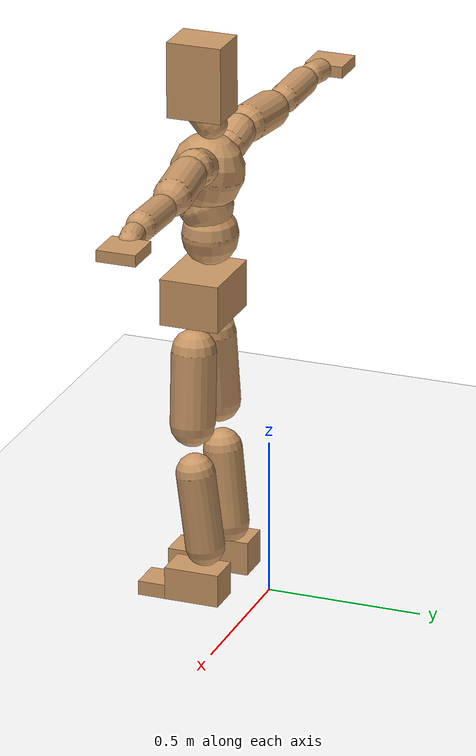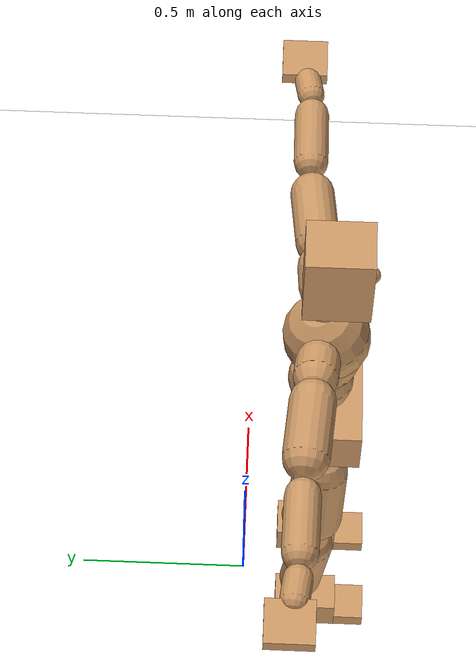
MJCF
<mujoco model="humanoid">
  <option integrator="implicitfast" />

  <visual>
    <global offwidth="1280" offheight="960" />
    <headlight active="1" ambient="0.34 0.34 0.34" diffuse="0.5 0.5 0.5" />
  </visual>

  <default>
    <joint damping="2" stiffness="2" armature="0.01" limited="true" solimplimit="0 .99 .01" />
    <geom condim="1" friction="0.7 0.005 0.0001" solimp=".99 .99 .003" solref="0.015 1" margin="0.001" rgba="0.8 0.6 .4 1" />
    <default class="smplcontact">
      <geom condim="3" friction="1. 0.005 0.0001" solref="0.015 1" solimp="0.98 0.98 0.001" priority="1" />
    </default>
    <default class="stiff_medium">
      <joint stiffness="10" />
    </default>
    <default class="stiff_medium_higher">
      <joint stiffness="50" />
    </default>
    <default class="stiff_high">
      <joint stiffness="100" />
    </default>
  </default>

  <asset>
    <texture type="skybox" builtin="gradient" rgb1="0.99 0.99 0.99" rgb2="0.608 0.828 0.892" width="100" />
    <texture builtin="flat" height="1278" mark="cross" markrgb="1 1 1" name="texgeom" random="0.01" rgb1="0.8 0.6 0.4" rgb2="0.8 0.6 0.4" type="cube" width="127" />
    <texture name="texplane" type="2d" builtin="checker" markrgb="1 1 1" rgb1="0.756 0.772 0.76" rgb2="0.6 0.6 0.6" width="100" height="100" />
    <material name="MatPlane" reflectance="0.5" texture="texplane" texrepeat="1 1" texuniform="true" />
    <material name="geom" texture="texgeom" texuniform="true" />
  </asset>

  <worldbody>
    <light name="tracking_light" pos="0 0 7" dir="0 0 -1" directional="true" cutoff="100" exponent="1" diffuse="1 1 1" specular="0.1 0.1 0.1" mode="trackcom" />
    <camera name="back" pos="0 3 2.4" xyaxes="-1 0 0 0 -1 2" mode="trackcom" />
    <camera name="side" pos="-3 0 2.4" xyaxes="0 -1 0 1 0 2" mode="trackcom" />
    <camera name="front_side" pos="-2.8 -2.8 0.8" xyaxes="0.5 -0.5 0 0.1 0.1 1" mode="trackcom" />
    <geom condim="3" name="floor" pos="0 0 0" rgba="1 1 1 1" size="100 100 .2" type="plane" material="MatPlane" />
    <body name="Pelvis" pos="-0.0018 -0.2233 0.983489" euler="90 0 0">
      <site name="Pelvis" size="0.01" />
      <freejoint name="Pelvis" />
      <geom type="box" pos="0 -0.0126139 -0.006325" size="0.122935 0.0752663 0.09545" quat="1.0000 0.0000 0.0000 0.0000" density="3165.830099" name="Pelvis" />
      <body name="L_Hip" pos="0.079925 -0.0952818 -0.00782">
        <joint name="L_Hip_x" type="hinge" pos="0 0 0" axis="1 0 0" stiffness="10" range="-160.0 22.92" class="stiff_medium" damping="15" />
        <joint name="L_Hip_y" type="hinge" pos="0 0 0" axis="0 1 0" stiffness="10" range="-70.0 70.0" class="stiff_medium" damping="10" />
        <joint name="L_Hip_z" type="hinge" pos="0 0 0" axis="0 0 1" stiffness="10" range="-28.65 90.0" class="stiff_medium" damping="10" />
        <geom type="capsule" density="2040.816327" fromto="0.0072008 -0.0781845 -0.0009383 0.0285714 -0.312949 -0.00375297" size="0.070725" name="L_Hip" />
        <body name="L_Knee" pos="0.0357722 -0.391133 -0.00469127">
          <joint name="L_Knee_x" type="hinge" pos="0 0 0" axis="1 0 0" range="-5.16 171.89" damping="8" />
          <joint name="L_Knee_y" type="hinge" pos="0 0 0" axis="0 1 0" range="-4.58 6.88" damping="8" />
          <joint name="L_Knee_z" type="hinge" pos="0 0 0" axis="0 0 1" range="-6.88 4.58" damping="8" />
          <geom type="capsule" density="1234.567901" fromto="-0.00281112 -0.0829815 -0.00906242 -0.0113594 -0.331923 -0.0364794" size="0.062215" name="L_Knee" />
          <body name="L_Ankle" pos="-0.0141705 -0.414905 -0.0455418">
            <joint name="L_Ankle_x" type="hinge" pos="0 0 0" axis="1 0 0" range="-45.84 45.84" class="stiff_medium" damping="6" />
            <joint name="L_Ankle_y" type="hinge" pos="0 0 0" axis="0 1 0" range="-74.48 22.92" class="stiff_medium" damping="3" />
            <joint name="L_Ankle_z" type="hinge" pos="0 0 0" axis="0 0 1" range="-4.58 4.58" class="stiff_medium" damping="6" />
            <geom type="box" pos="0.026795 -0.027485 0.0253533" size="0.055545 0.05336 0.089051" quat="1.0000 0.0000 0.0000 0.0000" density="449.071558" name="L_Ankle" class="smplcontact" />
            <body name="L_Toe" pos="0.03036 -0.06417 0.124986">
              <joint name="L_Toe_x" type="hinge" pos="0 0 0" axis="1 0 0" range="-91.67 22.92" />
              <joint name="L_Toe_y" type="hinge" pos="0 0 0" axis="0 1 0" range="-4.58 4.58" />
              <joint name="L_Toe_z" type="hinge" pos="0 0 0" axis="0 0 1" range="-4.58 4.58" />
              <geom type="box" pos="-0.00345 0.006325 0.0259819" size="0.05497 0.023 0.0519639" quat="1.0000 0.0000 0.0000 0.0000" density="423.206892" name="L_Toe" class="smplcontact" />
            </body>
          </body>
        </body>
      </body>
      <body name="R_Hip" pos="-0.077855 -0.0943435 -0.004945">
        <joint name="R_Hip_x" type="hinge" pos="0 0 0" axis="1 0 0" stiffness="10" range="-160.0 22.92" class="stiff_medium" damping="15" />
        <joint name="R_Hip_y" type="hinge" pos="0 0 0" axis="0 1 0" stiffness="10" range="-70.0 70.0" class="stiff_medium" damping="10" />
        <joint name="R_Hip_z" type="hinge" pos="0 0 0" axis="0 0 1" stiffness="10" range="-90.0 28.65" class="stiff_medium" damping="10" />
        <geom type="capsule" density="2040.816327" fromto="-0.00803446 -0.0797481 -0.00188009 -0.031907 -0.319099 -0.00740518" size="0.06969" name="R_Hip" />
        <body name="R_Knee" pos="-0.0399415 -0.398847 -0.00928528">
          <joint name="R_Knee_x" type="hinge" pos="0 0 0" axis="1 0 0" range="-5.16 171.89" damping="8" />
          <joint name="R_Knee_y" type="hinge" pos="0 0 0" axis="0 1 0" range="-6.88 4.58" damping="8" />
          <joint name="R_Knee_z" type="hinge" pos="0 0 0" axis="0 0 1" range="-4.58 6.88" damping="8" />
          <geom type="capsule" density="1234.567901" fromto="0.00334289 -0.0830839 -0.00886768 0.0131421 -0.332234 -0.0352422" size="0.062215" name="R_Knee" />
          <body name="R_Ankle" pos="0.016485 -0.415318 -0.0441098">
            <joint name="R_Ankle_x" type="hinge" pos="0 0 0" axis="1 0 0" range="-45.84 45.84" class="stiff_medium" damping="6" />
            <joint name="R_Ankle_y" type="hinge" pos="0 0 0" axis="0 1 0" range="-22.92 74.48" class="stiff_medium" damping="3" />
            <joint name="R_Ankle_z" type="hinge" pos="0 0 0" axis="0 0 1" range="-4.58 4.58" class="stiff_medium" damping="6" />
            <geom type="box" pos="-0.02438 -0.02001 0.0268201" size="0.055545 0.05497 0.0906225" quat="1.0000 0.0000 0.0000 0.0000" density="434.700981" name="R_Ankle" class="smplcontact" />
            <body name="R_Toe" pos="-0.02921 -0.055315 0.129176">
              <joint name="R_Toe_x" type="hinge" pos="0 0 0" axis="1 0 0" range="-91.67 22.92" />
              <joint name="R_Toe_y" type="hinge" pos="0 0 0" axis="0 1 0" range="-4.58 4.58" />
              <joint name="R_Toe_z" type="hinge" pos="0 0 0" axis="0 0 1" range="-4.58 4.58" />
              <geom type="box" pos="0.00483 0.005175 0.0237818" size="0.055085 0.02484 0.0516496" quat="1.0000 0.0000 0.0000 0.0000" density="407.384095" name="R_Toe" class="smplcontact" />
            </body>
          </body>
        </body>
      </body>
      <body name="Torso" pos="-0.002875 0.113629 -0.030705">
        <joint name="Torso_x" type="hinge" pos="0 0 0" axis="1 0 0" range="-25.78 57.3" class="stiff_medium" damping="15" />
        <joint name="Torso_y" type="hinge" pos="0 0 0" axis="0 1 0" range="-57.3 57.3" class="stiff_high" damping="20" />
        <joint name="Torso_z" type="hinge" pos="0 0 0" axis="0 0 1" range="-34.38 34.38" class="stiff_high" damping="20" />
        <geom type="capsule" density="2040.816327" fromto="0.00263282 0.0633811 0.000526564 0.00315406 0.0774545 0.000630811" size="0.088435" name="Torso" />
        <body name="Spine" pos="0.00578648 0.14094 0.0011573">
          <joint name="Spine_x" type="hinge" pos="0 0 0" axis="1 0 0" stiffness="10" range="-25.78 57.3" class="stiff_medium" damping="15" />
          <joint name="Spine_y" type="hinge" pos="0 0 0" axis="0 1 0" stiffness="10" range="-57.3 57.3" class="stiff_high" damping="8" />
          <joint name="Spine_z" type="hinge" pos="0 0 0" axis="0 0 1" stiffness="20" range="-34.38 34.38" class="stiff_high" damping="12" />
          <geom type="capsule" density="2040.816327" fromto="0.000756926 0.0248221 0.0118601 0.000861173 0.0303472 0.0145705" size="0.086825" name="Spine" />
          <body name="Chest" pos="0.0016181 0.0551693 0.0264306">
            <joint name="Chest_x" type="hinge" pos="0 0 0" axis="1 0 0" stiffness="10" range="-25.78 57.3" class="stiff_medium" damping="15" />
            <joint name="Chest_y" type="hinge" pos="0 0 0" axis="0 1 0" stiffness="10" range="-57.3 57.3" class="stiff_high" damping="8" />
            <joint name="Chest_z" type="hinge" pos="0 0 0" axis="0 0 1" stiffness="20" range="-34.38 34.38" class="stiff_high" damping="12" />
            <geom type="capsule" density="2040.816327" fromto="-0.000986486 0.0711043 -0.0180029 -0.00109073 0.0868456 -0.0220686" size="0.11523" name="Chest" />
            <body name="Neck" pos="-0.0030698 0.223305 -0.0434772">
              <joint name="Neck_x" type="hinge" pos="0 0 0" axis="1 0 0" range="-28.65 57.3" class="stiff_medium_higher" damping="10" />
              <joint name="Neck_y" type="hinge" pos="0 0 0" axis="0 1 0" range="-40.11 40.11" class="stiff_medium_higher" damping="10" />
              <joint name="Neck_z" type="hinge" pos="0 0 0" axis="0 0 1" range="-40.11 40.11" class="stiff_medium_higher" damping="10" />
              <geom type="capsule" density="1000" fromto="0.00104393 0.013618 0.0107932 0.00429167 0.0544767 0.0430611" size="0.0503885" name="Neck" />
              <body name="Head" pos="0.00545155 0.0680994 0.0537425">
                <joint name="Head_x" type="hinge" pos="0 0 0" axis="1 0 0" range="-28.65 57.3" class="stiff_medium_higher" damping="2" />
                <joint name="Head_y" type="hinge" pos="0 0 0" axis="0 1 0" range="-40.11 40.11" class="stiff_medium_higher" damping="2" />
                <joint name="Head_z" type="hinge" pos="0 0 0" axis="0 0 1" range="-40.11 40.11" class="stiff_medium_higher" damping="2" />
                <geom type="box" pos="-0.00485394 0.0917749 -0.0134061" size="0.0700354 0.1209 0.0878332" quat="1.0000 0.0000 0.0000 0.0000" density="1018.069894" name="Head" />
                <geom type="capsule" name="nose" size="0.023114 0.011557" pos="0 0.0733361 0.057785" quat="1 0 0 0" mass="0" contype="0" conaffinity="0" />
              </body>
            </body>
            <body name="L_Thorax" pos="0.0907068 0.126852 -0.0358309">
              <joint name="L_Thorax_x" type="hinge" pos="0 0 0" axis="1 0 0" range="-10.89 4.58" class="stiff_medium_higher" damping="20" />
              <joint name="L_Thorax_y" type="hinge" pos="0 0 0" axis="0 1 0" range="-28.65 17.19" class="stiff_medium_higher" damping="20" />
              <joint name="L_Thorax_z" type="hinge" pos="0 0 0" axis="0 0 1" range="-31.51 40.11" class="stiff_medium_higher" damping="20" />
              <geom type="capsule" density="1000" fromto="0.0189726 0.00635896 -0.00188 0.0758915 0.0254362 -0.00740509" size="0.059915" name="L_Thorax" />
              <body name="L_Shoulder" pos="0.0948641 0.0317951 -0.00928509">
                <joint name="L_Shoulder_x" type="hinge" pos="0 0 0" axis="1 0 0" range="-97.4 97.4" class="stiff_medium" damping="6" />
                <joint name="L_Shoulder_y" type="hinge" pos="0 0 0" axis="0 1 0" range="-108.86 80.21" class="stiff_medium" damping="6" />
                <joint name="L_Shoulder_z" type="hinge" pos="0 0 0" axis="0 0 1" range="-97.4 85.94" class="stiff_medium" damping="6" />
                <geom type="capsule" density="1000" fromto="0.0541038 -0.00271775 -0.00573392 0.216521 -0.0106405 -0.0229347" size="0.059455" name="L_Shoulder" />
                <body name="L_Elbow" pos="0.270624 -0.0133583 -0.0286686">
                  <joint name="L_Elbow_x" type="hinge" pos="0 0 0" axis="1 0 0" range="-17.19 4.58" damping="5" />
                  <joint name="L_Elbow_y" type="hinge" pos="0 0 0" axis="0 1 0" range="-180.0 17.19" damping="5" />
                  <joint name="L_Elbow_z" type="hinge" pos="0 0 0" axis="0 0 1" range="-100.84 4.58" damping="5" />
                  <geom type="capsule" density="1000" fromto="0.051915 0.0018767 -0.000204943 0.207869 0.00750604 -0.000934672" size="0.046575" name="L_Elbow" />
                  <body name="L_Wrist" pos="0.259783 0.00938275 -0.00125462">
                    <joint name="L_Wrist_x" type="hinge" pos="0 0 0" axis="1 0 0" range="-180.0 22.92" />
                    <joint name="L_Wrist_y" type="hinge" pos="0 0 0" axis="0 1 0" range="-17.19 17.19" />
                    <joint name="L_Wrist_z" type="hinge" pos="0 0 0" axis="0 0 1" range="-22.92 22.92" />
                    <geom type="capsule" density="1000" fromto="0.0175138 -0.0016644 -0.00312747 0.0700543 -0.0067725 -0.0125097" size="0.03657" name="L_Wrist" class="smplcontact" />
                    <body name="L_Hand" pos="0.087569 -0.00855198 -0.0155223">
                      <joint name="L_Hand_x" type="hinge" pos="0 0 0" axis="1 0 0" range="-17.19 17.19" />
                      <joint name="L_Hand_y" type="hinge" pos="0 0 0" axis="0 1 0" range="-51.57 51.57" />
                      <joint name="L_Hand_z" type="hinge" pos="0 0 0" axis="0 0 1" range="-91.67 91.67" />
                      <geom type="box" pos="0.0513938 0.00115 -0.00667" size="0.0609845 0.01817 0.06187" quat="1.0000 0.0000 0.0000 0.0000" density="400.552564" name="L_Hand" class="smplcontact" />
                    </body>
                  </body>
                </body>
              </body>
            </body>
            <body name="R_Thorax" pos="-0.0939837 0.123585 -0.0410234">
              <joint name="R_Thorax_x" type="hinge" pos="0 0 0" axis="1 0 0" range="-10.89 4.58" class="stiff_medium_higher" damping="20" />
              <joint name="R_Thorax_y" type="hinge" pos="0 0 0" axis="0 1 0" range="-17.19 28.65" class="stiff_medium_higher" damping="20" />
              <joint name="R_Thorax_z" type="hinge" pos="0 0 0" axis="0 0 1" range="-40.11 31.51" class="stiff_medium_higher" damping="20" />
              <geom type="capsule" density="1000" fromto="-0.0200157 0.00677616 -0.00187289 -0.080062 0.0271043 -0.00760648" size="0.058765" name="R_Thorax" />
              <body name="R_Shoulder" pos="-0.100074 0.0339944 -0.00947906">
                <joint name="R_Shoulder_x" type="hinge" pos="0 0 0" axis="1 0 0" range="-97.4 97.4" class="stiff_medium" damping="6" />
                <joint name="R_Shoulder_y" type="hinge" pos="0 0 0" axis="0 1 0" range="-80.21 108.86" class="stiff_medium" damping="6" />
                <joint name="R_Shoulder_z" type="hinge" pos="0 0 0" axis="0 0 1" range="-85.94 97.4" class="stiff_medium" damping="6" />
                <geom type="capsule" density="1000" fromto="-0.0528527 -0.0028186 -0.00448676 -0.211621 -0.0111584 -0.0178304" size="0.061065" name="R_Shoulder" />
                <body name="R_Elbow" pos="-0.264474 -0.013862 -0.0223172">
                  <joint name="R_Elbow_x" type="hinge" pos="0 0 0" axis="1 0 0" range="-17.19 4.58" damping="5" />
                  <joint name="R_Elbow_y" type="hinge" pos="0 0 0" axis="0 1 0" range="-17.19 180.0" damping="5" />
                  <joint name="R_Elbow_z" type="hinge" pos="0 0 0" axis="0 0 1" range="-4.58 100.84" damping="5" />
                  <geom type="capsule" density="1000" fromto="-0.05327 0.0016749 -0.00114656 -0.212872 0.00647026 -0.00458671" size="0.04692" name="R_Elbow" />
                  <body name="R_Wrist" pos="-0.266142 0.00814515 -0.00584826">
                    <joint name="R_Wrist_x" type="hinge" pos="0 0 0" axis="1 0 0" range="-180.0 22.92" />
                    <joint name="R_Wrist_y" type="hinge" pos="0 0 0" axis="0 1 0" range="-17.19 17.19" />
                    <joint name="R_Wrist_z" type="hinge" pos="0 0 0" axis="0 0 1" range="-22.92 22.92" />
                    <geom type="capsule" density="1000" fromto="-0.0176175 -0.00124762 -0.00219318 -0.070575 -0.00510476 -0.00865649" size="0.03749" name="R_Wrist" class="smplcontact" />
                    <body name="R_Hand" pos="-0.0881938 -0.00635248 -0.0107348">
                      <joint name="R_Hand_x" type="hinge" pos="0 0 0" axis="1 0 0" range="-17.19 17.19" />
                      <joint name="R_Hand_y" type="hinge" pos="0 0 0" axis="0 1 0" range="-51.57 51.57" />
                      <joint name="R_Hand_z" type="hinge" pos="0 0 0" axis="0 0 1" range="-91.67 91.67" />
                      <geom type="box" pos="-0.0481621 -0.001035 -0.009085" size="0.0593165 0.01886 0.06279" quat="1.0000 0.0000 0.0000 0.0000" density="403.679611" name="R_Hand" class="smplcontact" />
                    </body>
                  </body>
                </body>
              </body>
            </body>
          </body>
        </body>
      </body>
    </body>
  </worldbody>
  <actuator>
    <general name="L_Hip_x" joint="L_Hip_x" biastype="affine" gainprm="287.33006409732246" biasprm="-215.3247604770444 -180 -2.0" ctrllimited="true" ctrlrange="-1 1" forcerange="-360 360" />
    <general name="L_Hip_y" joint="L_Hip_y" biastype="affine" gainprm="219.9114857512855" biasprm="0.0 -180 -2.0" ctrllimited="true" ctrlrange="-1 1" forcerange="-360 360" />
    <general name="L_Hip_z" joint="L_Hip_z" biastype="affine" gainprm="186.3749841742145" biasprm="96.3683546488669 -180 -2.0" ctrllimited="true" ctrlrange="-1 1" forcerange="-360 360" />
    <general name="L_Knee_x" joint="L_Knee_x" biastype="affine" gainprm="278.10948965903646" biasprm="261.8988715665131 -180 -2.0" ctrllimited="true" ctrlrange="-1 1" forcerange="-360 360" />
    <general name="L_Knee_y" joint="L_Knee_y" biastype="affine" gainprm="18.001325905069514" biasprm="3.612831551628262 -180 -2.0" ctrllimited="true" ctrlrange="-1 1" forcerange="-360 360" />
    <general name="L_Knee_z" joint="L_Knee_z" biastype="affine" gainprm="18.001325905069514" biasprm="-3.612831551628262 -180 -2.0" ctrllimited="true" ctrlrange="-1 1" forcerange="-360 360" />
    <general name="L_Ankle_x" joint="L_Ankle_x" biastype="affine" gainprm="72.00530362027807" biasprm="0.0 -90 -2.0" ctrllimited="true" ctrlrange="-1 1" forcerange="-180 180" />
    <general name="L_Ankle_y" joint="L_Ankle_y" biastype="affine" gainprm="76.49778111491148" biasprm="-40.49512930477244 -90 -2.0" ctrllimited="true" ctrlrange="-1 1" forcerange="-180 180" />
    <general name="L_Ankle_z" joint="L_Ankle_z" biastype="affine" gainprm="7.1942471767206255" biasprm="0.0 -90 -2.0" ctrllimited="true" ctrlrange="-1 1" forcerange="-180 180" />
    <general name="L_Toe_x" joint="L_Toe_x" biastype="affine" gainprm="71.99902043497087" biasprm="-43.19689898685965 -72 -0.8" ctrllimited="true" ctrlrange="-1 1" forcerange="-144 144" />
    <general name="L_Toe_y" joint="L_Toe_y" biastype="affine" gainprm="5.755397741376501" biasprm="0.0 -72 -0.8" ctrllimited="true" ctrlrange="-1 1" forcerange="-144 144" />
    <general name="L_Toe_z" joint="L_Toe_z" biastype="affine" gainprm="5.755397741376501" biasprm="0.0 -72 -0.8" ctrllimited="true" ctrlrange="-1 1" forcerange="-144 144" />
    <general name="R_Hip_x" joint="R_Hip_x" biastype="affine" gainprm="287.33006409732246" biasprm="-215.3247604770444 -180 -2.0" ctrllimited="true" ctrlrange="-1 1" forcerange="-360 360" />
    <general name="R_Hip_y" joint="R_Hip_y" biastype="affine" gainprm="219.9114857512855" biasprm="0.0 -180 -2.0" ctrllimited="true" ctrlrange="-1 1" forcerange="-360 360" />
    <general name="R_Hip_z" joint="R_Hip_z" biastype="affine" gainprm="186.3749841742145" biasprm="-96.3683546488669 -180 -2.0" ctrllimited="true" ctrlrange="-1 1" forcerange="-360 360" />
    <general name="R_Knee_x" joint="R_Knee_x" biastype="affine" gainprm="278.10948965903646" biasprm="261.8988715665131 -180 -2.0" ctrllimited="true" ctrlrange="-1 1" forcerange="-360 360" />
    <general name="R_Knee_y" joint="R_Knee_y" biastype="affine" gainprm="18.001325905069514" biasprm="-3.612831551628262 -180 -2.0" ctrllimited="true" ctrlrange="-1 1" forcerange="-360 360" />
    <general name="R_Knee_z" joint="R_Knee_z" biastype="affine" gainprm="18.001325905069514" biasprm="3.612831551628262 -180 -2.0" ctrllimited="true" ctrlrange="-1 1" forcerange="-360 360" />
    <general name="R_Ankle_x" joint="R_Ankle_x" biastype="affine" gainprm="72.00530362027807" biasprm="0.0 -90 -2.0" ctrllimited="true" ctrlrange="-1 1" forcerange="-180 180" />
    <general name="R_Ankle_y" joint="R_Ankle_y" biastype="affine" gainprm="76.49778111491148" biasprm="40.49512930477244 -90 -2.0" ctrllimited="true" ctrlrange="-1 1" forcerange="-180 180" />
    <general name="R_Ankle_z" joint="R_Ankle_z" biastype="affine" gainprm="7.1942471767206255" biasprm="0.0 -90 -2.0" ctrllimited="true" ctrlrange="-1 1" forcerange="-180 180" />
    <general name="R_Toe_x" joint="R_Toe_x" biastype="affine" gainprm="71.99902043497087" biasprm="-43.19689898685965 -72 -0.8" ctrllimited="true" ctrlrange="-1 1" forcerange="-144 144" />
    <general name="R_Toe_y" joint="R_Toe_y" biastype="affine" gainprm="5.755397741376501" biasprm="0.0 -72 -0.8" ctrllimited="true" ctrlrange="-1 1" forcerange="-144 144" />
    <general name="R_Toe_z" joint="R_Toe_z" biastype="affine" gainprm="5.755397741376501" biasprm="0.0 -72 -0.8" ctrllimited="true" ctrlrange="-1 1" forcerange="-144 144" />
    <general name="Torso_x" joint="Torso_x" biastype="affine" gainprm="174.00234510682668" biasprm="66.0153336274335 -240 -4.0" ctrllimited="true" ctrlrange="-1 1" forcerange="-360 360" />
    <general name="Torso_y" joint="Torso_y" biastype="affine" gainprm="240.0176787342602" biasprm="0.0 -240 -4.0" ctrllimited="true" ctrlrange="-1 1" forcerange="-360 360" />
    <general name="Torso_z" joint="Torso_z" biastype="affine" gainprm="144.01060724055614" biasprm="0.0 -240 -4.0" ctrllimited="true" ctrlrange="-1 1" forcerange="-360 360" />
    <general name="Spine_x" joint="Spine_x" biastype="affine" gainprm="174.00234510682668" biasprm="66.0153336274335 -240 -4.0" ctrllimited="true" ctrlrange="-1 1" forcerange="-360 360" />
    <general name="Spine_y" joint="Spine_y" biastype="affine" gainprm="240.0176787342602" biasprm="0.0 -240 -4.0" ctrllimited="true" ctrlrange="-1 1" forcerange="-360 360" />
    <general name="Spine_z" joint="Spine_z" biastype="affine" gainprm="144.01060724055614" biasprm="0.0 -240 -4.0" ctrllimited="true" ctrlrange="-1 1" forcerange="-360 360" />
    <general name="Chest_x" joint="Chest_x" biastype="affine" gainprm="174.00234510682668" biasprm="66.0153336274335 -240 -4.0" ctrllimited="true" ctrlrange="-1 1" forcerange="-360 360" />
    <general name="Chest_y" joint="Chest_y" biastype="affine" gainprm="240.0176787342602" biasprm="0.0 -240 -4.0" ctrllimited="true" ctrlrange="-1 1" forcerange="-360 360" />
    <general name="Chest_z" joint="Chest_z" biastype="affine" gainprm="144.01060724055614" biasprm="0.0 -240 -4.0" ctrllimited="true" ctrlrange="-1 1" forcerange="-360 360" />
    <general name="Neck_x" joint="Neck_x" biastype="affine" gainprm="27.00198885760427" biasprm="9.000662952534757 -36 -0.8" ctrllimited="true" ctrlrange="-1 1" forcerange="-72 72" />
    <general name="Neck_y" joint="Neck_y" biastype="affine" gainprm="25.20185626709732" biasprm="0.0 -36 -0.8" ctrllimited="true" ctrlrange="-1 1" forcerange="-72 72" />
    <general name="Neck_z" joint="Neck_z" biastype="affine" gainprm="25.20185626709732" biasprm="0.0 -36 -0.8" ctrllimited="true" ctrlrange="-1 1" forcerange="-72 72" />
    <general name="Head_x" joint="Head_x" biastype="affine" gainprm="18.001325905069514" biasprm="6.000441968356505 -24 -0.8" ctrllimited="true" ctrlrange="-1 1" forcerange="-48 48" />
    <general name="Head_y" joint="Head_y" biastype="affine" gainprm="16.801237511398213" biasprm="0.0 -24 -0.8" ctrllimited="true" ctrlrange="-1 1" forcerange="-48 48" />
    <general name="Head_z" joint="Head_z" biastype="affine" gainprm="16.801237511398213" biasprm="0.0 -24 -0.8" ctrllimited="true" ctrlrange="-1 1" forcerange="-48 48" />
    <general name="L_Thorax_x" joint="L_Thorax_x" biastype="affine" gainprm="16.200146117011364" biasprm="-6.6078165480505335 -120 -1.6" ctrllimited="true" ctrlrange="-1 1" forcerange="-240 240" />
    <general name="L_Thorax_y" joint="L_Thorax_y" biastype="affine" gainprm="48.00353574685204" biasprm="-12.00088393671301 -120 -1.6" ctrllimited="true" ctrlrange="-1 1" forcerange="-240 240" />
    <general name="L_Thorax_z" joint="L_Thorax_z" biastype="affine" gainprm="75.00028861670033" biasprm="9.00589894029074 -120 -1.6" ctrllimited="true" ctrlrange="-1 1" forcerange="-240 240" />
    <general name="L_Shoulder_x" joint="L_Shoulder_x" biastype="affine" gainprm="81.5976331892389" biasprm="0.0 -48 -1.6" ctrllimited="true" ctrlrange="-1 1" forcerange="-96 96" />
    <general name="L_Shoulder_y" joint="L_Shoulder_y" biastype="affine" gainprm="79.19745640189629" biasprm="-12.00088393671301 -48 -1.6" ctrllimited="true" ctrlrange="-1 1" forcerange="-96 96" />
    <general name="L_Shoulder_z" joint="L_Shoulder_z" biastype="affine" gainprm="76.79727961455369" biasprm="-4.800353574685214 -48 -1.6" ctrllimited="true" ctrlrange="-1 1" forcerange="-96 96" />
    <general name="L_Elbow_x" joint="L_Elbow_x" biastype="affine" gainprm="13.67849441372996" biasprm="-7.923096672353461 -72 -0.8" ctrllimited="true" ctrlrange="-1 1" forcerange="-144 144" />
    <general name="L_Elbow_y" joint="L_Elbow_y" biastype="affine" gainprm="123.89813107227425" biasprm="-102.29653998619085 -72 -0.8" ctrllimited="true" ctrlrange="-1 1" forcerange="-144 144" />
    <general name="L_Elbow_z" joint="L_Elbow_z" biastype="affine" gainprm="66.23733950828719" biasprm="-60.4819417669107 -72 -0.8" ctrllimited="true" ctrlrange="-1 1" forcerange="-144 144" />
    <general name="L_Wrist_x" joint="L_Wrist_x" biastype="affine" gainprm="21.24973270888136" biasprm="-16.449379134196157 -12 -0.8" ctrllimited="true" ctrlrange="-1 1" forcerange="-24 24" />
    <general name="L_Wrist_y" joint="L_Wrist_y" biastype="affine" gainprm="3.6002651810139037" biasprm="0.0 -12 -0.8" ctrllimited="true" ctrlrange="-1 1" forcerange="-24 24" />
    <general name="L_Wrist_z" joint="L_Wrist_z" biastype="affine" gainprm="4.800353574685205" biasprm="0.0 -12 -0.8" ctrllimited="true" ctrlrange="-1 1" forcerange="-24 24" />
    <general name="L_Hand_x" joint="L_Hand_x" biastype="affine" gainprm="3.6002651810139037" biasprm="0.0 -12 -0.8" ctrllimited="true" ctrlrange="-1 1" forcerange="-24 24" />
    <general name="L_Hand_y" joint="L_Hand_y" biastype="affine" gainprm="10.800795543041708" biasprm="0.0 -12 -0.8" ctrllimited="true" ctrlrange="-1 1" forcerange="-24 24" />
    <general name="L_Hand_z" joint="L_Hand_z" biastype="affine" gainprm="19.199319903638422" biasprm="0.0 -12 -0.8" ctrllimited="true" ctrlrange="-1 1" forcerange="-24 24" />
    <general name="R_Thorax_x" joint="R_Thorax_x" biastype="affine" gainprm="16.200146117011364" biasprm="-6.6078165480505335 -120 -1.6" ctrllimited="true" ctrlrange="-1 1" forcerange="-240 240" />
    <general name="R_Thorax_y" joint="R_Thorax_y" biastype="affine" gainprm="48.00353574685204" biasprm="12.000883936713002 -120 -1.6" ctrllimited="true" ctrlrange="-1 1" forcerange="-240 240" />
    <general name="R_Thorax_z" joint="R_Thorax_z" biastype="affine" gainprm="75.00028861670033" biasprm="-9.00589894029074 -120 -1.6" ctrllimited="true" ctrlrange="-1 1" forcerange="-240 240" />
    <general name="R_Shoulder_x" joint="R_Shoulder_x" biastype="affine" gainprm="81.5976331892389" biasprm="0.0 -48 -1.6" ctrllimited="true" ctrlrange="-1 1" forcerange="-96 96" />
    <general name="R_Shoulder_y" joint="R_Shoulder_y" biastype="affine" gainprm="79.19745640189629" biasprm="12.00088393671301 -48 -1.6" ctrllimited="true" ctrlrange="-1 1" forcerange="-96 96" />
    <general name="R_Shoulder_z" joint="R_Shoulder_z" biastype="affine" gainprm="76.79727961455369" biasprm="4.800353574685204 -48 -1.6" ctrllimited="true" ctrlrange="-1 1" forcerange="-96 96" />
    <general name="R_Elbow_x" joint="R_Elbow_x" biastype="affine" gainprm="13.67849441372996" biasprm="-7.923096672353461 -72 -0.8" ctrllimited="true" ctrlrange="-1 1" forcerange="-144 144" />
    <general name="R_Elbow_y" joint="R_Elbow_y" biastype="affine" gainprm="123.89813107227425" biasprm="102.29653998619085 -72 -0.8" ctrllimited="true" ctrlrange="-1 1" forcerange="-144 144" />
    <general name="R_Elbow_z" joint="R_Elbow_z" biastype="affine" gainprm="66.23733950828719" biasprm="60.481941766910694 -72 -0.8" ctrllimited="true" ctrlrange="-1 1" forcerange="-144 144" />
    <general name="R_Wrist_x" joint="R_Wrist_x" biastype="affine" gainprm="21.24973270888136" biasprm="-16.449379134196157 -12 -0.8" ctrllimited="true" ctrlrange="-1 1" forcerange="-24 24" />
    <general name="R_Wrist_y" joint="R_Wrist_y" biastype="affine" gainprm="3.6002651810139037" biasprm="0.0 -12 -0.8" ctrllimited="true" ctrlrange="-1 1" forcerange="-24 24" />
    <general name="R_Wrist_z" joint="R_Wrist_z" biastype="affine" gainprm="4.800353574685205" biasprm="0.0 -12 -0.8" ctrllimited="true" ctrlrange="-1 1" forcerange="-24 24" />
    <general name="R_Hand_x" joint="R_Hand_x" biastype="affine" gainprm="3.6002651810139037" biasprm="0.0 -12 -0.8" ctrllimited="true" ctrlrange="-1 1" forcerange="-24 24" />
    <general name="R_Hand_y" joint="R_Hand_y" biastype="affine" gainprm="10.800795543041708" biasprm="0.0 -12 -0.8" ctrllimited="true" ctrlrange="-1 1" forcerange="-24 24" />
    <general name="R_Hand_z" joint="R_Hand_z" biastype="affine" gainprm="19.199319903638422" biasprm="0.0 -12 -0.8" ctrllimited="true" ctrlrange="-1 1" forcerange="-24 24" />
  </actuator>
  <contact>
    <exclude body1="Torso" body2="Chest" />
    <exclude body1="Head" body2="Chest" />
    <exclude body1="R_Knee" body2="R_Toe" />
    <exclude body1="R_Knee" body2="L_Ankle" />
    <exclude body1="R_Knee" body2="L_Toe" />
    <exclude body1="L_Knee" body2="L_Toe" />
    <exclude body1="L_Knee" body2="R_Ankle" />
    <exclude body1="L_Knee" body2="R_Toe" />
    <exclude body1="L_Shoulder" body2="Chest" />
    <exclude body1="R_Shoulder" body2="Chest" />
  </contact>
  <sensor>
    <framelinvel name="sensor_Pelvis_framelinvel" objtype="xbody" objname="Pelvis" />
    <framelinvel name="sensor_L_Hip_framelinvel" objtype="xbody" objname="L_Hip" />
    <framelinvel name="sensor_L_Knee_framelinvel" objtype="xbody" objname="L_Knee" />
    <framelinvel name="sensor_L_Ankle_framelinvel" objtype="xbody" objname="L_Ankle" />
    <framelinvel name="sensor_L_Toe_framelinvel" objtype="xbody" objname="L_Toe" />
    <framelinvel name="sensor_R_Hip_framelinvel" objtype="xbody" objname="R_Hip" />
    <framelinvel name="sensor_R_Knee_framelinvel" objtype="xbody" objname="R_Knee" />
    <framelinvel name="sensor_R_Ankle_framelinvel" objtype="xbody" objname="R_Ankle" />
    <framelinvel name="sensor_R_Toe_framelinvel" objtype="xbody" objname="R_Toe" />
    <framelinvel name="sensor_Torso_framelinvel" objtype="xbody" objname="Torso" />
    <framelinvel name="sensor_Spine_framelinvel" objtype="xbody" objname="Spine" />
    <framelinvel name="sensor_Chest_framelinvel" objtype="xbody" objname="Chest" />
    <framelinvel name="sensor_Neck_framelinvel" objtype="xbody" objname="Neck" />
    <framelinvel name="sensor_Head_framelinvel" objtype="xbody" objname="Head" />
    <framelinvel name="sensor_L_Thorax_framelinvel" objtype="xbody" objname="L_Thorax" />
    <framelinvel name="sensor_L_Shoulder_framelinvel" objtype="xbody" objname="L_Shoulder" />
    <framelinvel name="sensor_L_Elbow_framelinvel" objtype="xbody" objname="L_Elbow" />
    <framelinvel name="sensor_L_Wrist_framelinvel" objtype="xbody" objname="L_Wrist" />
    <framelinvel name="sensor_L_Hand_framelinvel" objtype="xbody" objname="L_Hand" />
    <framelinvel name="sensor_R_Thorax_framelinvel" objtype="xbody" objname="R_Thorax" />
    <framelinvel name="sensor_R_Shoulder_framelinvel" objtype="xbody" objname="R_Shoulder" />
    <framelinvel name="sensor_R_Elbow_framelinvel" objtype="xbody" objname="R_Elbow" />
    <framelinvel name="sensor_R_Wrist_framelinvel" objtype="xbody" objname="R_Wrist" />
    <framelinvel name="sensor_R_Hand_framelinvel" objtype="xbody" objname="R_Hand" />
    <frameangvel name="sensor_Pelvis_frameangvel" objtype="xbody" objname="Pelvis" />
    <frameangvel name="sensor_L_Hip_frameangvel" objtype="xbody" objname="L_Hip" />
    <frameangvel name="sensor_L_Knee_frameangvel" objtype="xbody" objname="L_Knee" />
    <frameangvel name="sensor_L_Ankle_frameangvel" objtype="xbody" objname="L_Ankle" />
    <frameangvel name="sensor_L_Toe_frameangvel" objtype="xbody" objname="L_Toe" />
    <frameangvel name="sensor_R_Hip_frameangvel" objtype="xbody" objname="R_Hip" />
    <frameangvel name="sensor_R_Knee_frameangvel" objtype="xbody" objname="R_Knee" />
    <frameangvel name="sensor_R_Ankle_frameangvel" objtype="xbody" objname="R_Ankle" />
    <frameangvel name="sensor_R_Toe_frameangvel" objtype="xbody" objname="R_Toe" />
    <frameangvel name="sensor_Torso_frameangvel" objtype="xbody" objname="Torso" />
    <frameangvel name="sensor_Spine_frameangvel" objtype="xbody" objname="Spine" />
    <frameangvel name="sensor_Chest_frameangvel" objtype="xbody" objname="Chest" />
    <frameangvel name="sensor_Neck_frameangvel" objtype="xbody" objname="Neck" />
    <frameangvel name="sensor_Head_frameangvel" objtype="xbody" objname="Head" />
    <frameangvel name="sensor_L_Thorax_frameangvel" objtype="xbody" objname="L_Thorax" />
    <frameangvel name="sensor_L_Shoulder_frameangvel" objtype="xbody" objname="L_Shoulder" />
    <frameangvel name="sensor_L_Elbow_frameangvel" objtype="xbody" objname="L_Elbow" />
    <frameangvel name="sensor_L_Wrist_frameangvel" objtype="xbody" objname="L_Wrist" />
    <frameangvel name="sensor_L_Hand_frameangvel" objtype="xbody" objname="L_Hand" />
    <frameangvel name="sensor_R_Thorax_frameangvel" objtype="xbody" objname="R_Thorax" />
    <frameangvel name="sensor_R_Shoulder_frameangvel" objtype="xbody" objname="R_Shoulder" />
    <frameangvel name="sensor_R_Elbow_frameangvel" objtype="xbody" objname="R_Elbow" />
    <frameangvel name="sensor_R_Wrist_frameangvel" objtype="xbody" objname="R_Wrist" />
    <frameangvel name="sensor_R_Hand_frameangvel" objtype="xbody" objname="R_Hand" />
    <subtreelinvel name="Chest_subtreelinvel" body="Chest" />
    <gyro name="Pelvis_gyro" site="Pelvis" />
  </sensor>
</mujoco>
